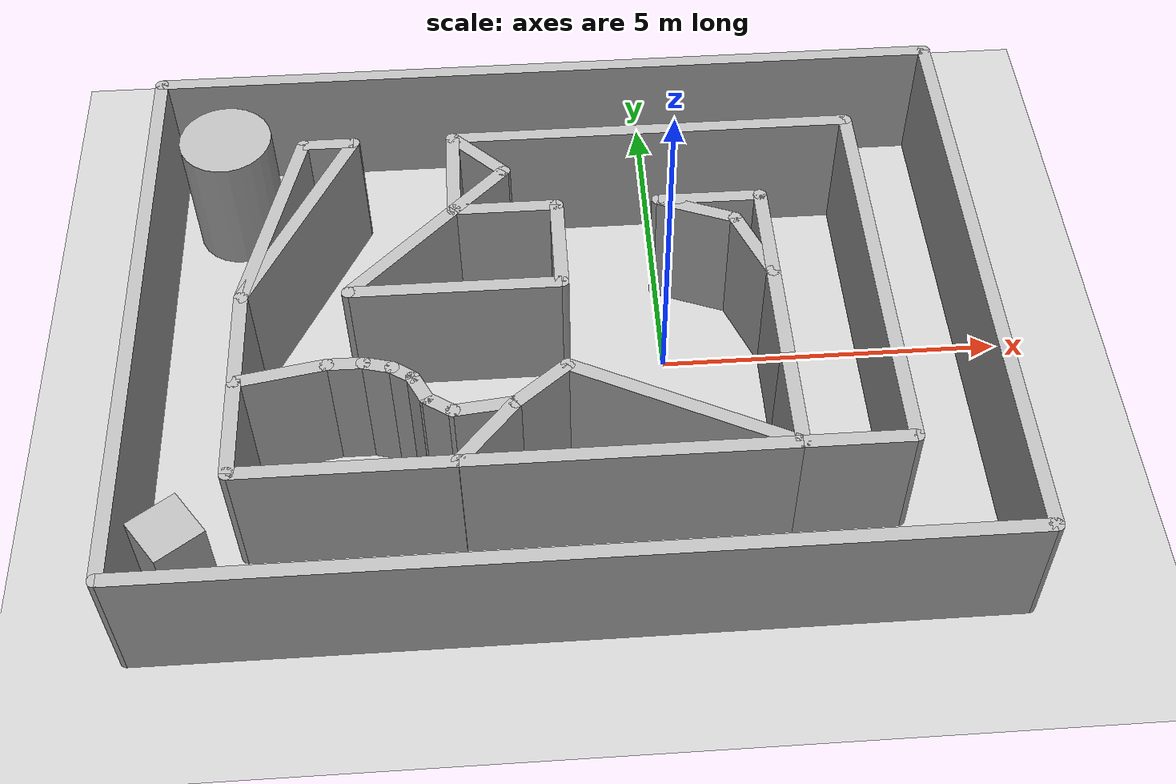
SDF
<sdf version="1.6">
 <world name="default">
  <model name="wall_0">
   <static>true</static>
   <link name="link">
    <pose>-4.875 3.000 1.000 0 0 0.000</pose>
    <collision name="collision"><geometry><box><size>0.750 0.200 2.000</size></box></geometry></collision>
    <visual name="visual"><geometry><box><size>0.750 0.200 2.000</size></box></geometry></visual>
   </link>
  </model>
  <model name="wall_1">
   <static>true</static>
   <link name="link">
    <pose>-5.625 1.500 1.000 0 0 -1.816</pose>
    <collision name="collision"><geometry><box><size>3.092 0.200 2.000</size></box></geometry></collision>
    <visual name="visual"><geometry><box><size>3.092 0.200 2.000</size></box></geometry></visual>
   </link>
  </model>
  <model name="wall_2">
   <static>true</static>
   <link name="link">
    <pose>-2.647 -2.136 1.000 0 0 -3.035</pose>
    <collision name="collision"><geometry><box><size>0.848 0.200 2.000</size></box></geometry></collision>
    <visual name="visual"><geometry><box><size>0.848 0.200 2.000</size></box></geometry></visual>
   </link>
  </model>
  <model name="wall_3">
   <static>true</static>
   <link name="link">
    <pose>-1.863 -1.796 1.000 0 0 0.684</pose>
    <collision name="collision"><geometry><box><size>0.936 0.200 2.000</size></box></geometry></collision>
    <visual name="visual"><geometry><box><size>0.936 0.200 2.000</size></box></geometry></visual>
   </link>
  </model>
  <model name="wall_4">
   <static>true</static>
   <link name="link">
    <pose>-2.613 -2.546 1.000 0 0 -2.277</pose>
    <collision name="collision"><geometry><box><size>1.194 0.200 2.000</size></box></geometry></collision>
    <visual name="visual"><geometry><box><size>1.194 0.200 2.000</size></box></geometry></visual>
   </link>
  </model>
  <model name="wall_5">
   <static>true</static>
   <link name="link">
    <pose>-0.750 -3.000 1.000 0 0 0.000</pose>
    <collision name="collision"><geometry><box><size>4.500 0.200 2.000</size></box></geometry></collision>
    <visual name="visual"><geometry><box><size>4.500 0.200 2.000</size></box></geometry></visual>
   </link>
  </model>
  <model name="wall_6">
   <static>true</static>
   <link name="link">
    <pose>-4.500 -3.000 1.000 0 0 3.142</pose>
    <collision name="collision"><geometry><box><size>3.000 0.200 2.000</size></box></geometry></collision>
    <visual name="visual"><geometry><box><size>3.000 0.200 2.000</size></box></geometry></visual>
   </link>
  </model>
  <model name="wall_7">
   <static>true</static>
   <link name="link">
    <pose>-6.000 -2.250 1.000 0 0 1.571</pose>
    <collision name="collision"><geometry><box><size>1.500 0.200 2.000</size></box></geometry></collision>
    <visual name="visual"><geometry><box><size>1.500 0.200 2.000</size></box></geometry></visual>
   </link>
  </model>
  <model name="wall_8">
   <static>true</static>
   <link name="link">
    <pose>-7.500 0.000 1.000 0 0 1.571</pose>
    <collision name="collision"><geometry><box><size>9.000 0.200 2.000</size></box></geometry></collision>
    <visual name="visual"><geometry><box><size>9.000 0.200 2.000</size></box></geometry></visual>
   </link>
  </model>
  <model name="wall_9">
   <static>true</static>
   <link name="link">
    <pose>-1.500 -4.500 1.000 0 0 0.000</pose>
    <collision name="collision"><geometry><box><size>12.000 0.200 2.000</size></box></geometry></collision>
    <visual name="visual"><geometry><box><size>12.000 0.200 2.000</size></box></geometry></visual>
   </link>
  </model>
  <model name="wall_10">
   <static>true</static>
   <link name="link">
    <pose>4.500 0.000 1.000 0 0 1.571</pose>
    <collision name="collision"><geometry><box><size>9.000 0.200 2.000</size></box></geometry></collision>
    <visual name="visual"><geometry><box><size>9.000 0.200 2.000</size></box></geometry></visual>
   </link>
  </model>
  <model name="wall_11">
   <static>true</static>
   <link name="link">
    <pose>-1.500 4.500 1.000 0 0 3.142</pose>
    <collision name="collision"><geometry><box><size>12.000 0.200 2.000</size></box></geometry></collision>
    <visual name="visual"><geometry><box><size>12.000 0.200 2.000</size></box></geometry></visual>
   </link>
  </model>
  <model name="wall_12">
   <static>true</static>
   <link name="link">
    <pose>-2.625 2.625 1.000 0 0 2.356</pose>
    <collision name="collision"><geometry><box><size>1.061 0.200 2.000</size></box></geometry></collision>
    <visual name="visual"><geometry><box><size>1.061 0.200 2.000</size></box></geometry></visual>
   </link>
  </model>
  <model name="wall_13">
   <static>true</static>
   <link name="link">
    <pose>-2.625 1.875 1.000 0 0 -2.356</pose>
    <collision name="collision"><geometry><box><size>1.061 0.200 2.000</size></box></geometry></collision>
    <visual name="visual"><geometry><box><size>1.061 0.200 2.000</size></box></geometry></visual>
   </link>
  </model>
  <model name="wall_14">
   <static>true</static>
   <link name="link">
    <pose>2.250 -3.000 1.000 0 0 -0.000</pose>
    <collision name="collision"><geometry><box><size>1.500 0.200 2.000</size></box></geometry></collision>
    <visual name="visual"><geometry><box><size>1.500 0.200 2.000</size></box></geometry></visual>
   </link>
  </model>
  <model name="wall_15">
   <static>true</static>
   <link name="link">
    <pose>0.000 -2.250 1.000 0 0 2.678</pose>
    <collision name="collision"><geometry><box><size>3.354 0.200 2.000</size></box></geometry></collision>
    <visual name="visual"><geometry><box><size>3.354 0.200 2.000</size></box></geometry></visual>
   </link>
  </model>
  <model name="wall_16">
   <static>true</static>
   <link name="link">
    <pose>1.500 -2.250 1.000 0 0 1.571</pose>
    <collision name="collision"><geometry><box><size>1.500 0.200 2.000</size></box></geometry></collision>
    <visual name="visual"><geometry><box><size>1.500 0.200 2.000</size></box></geometry></visual>
   </link>
  </model>
  <model name="wall_17">
   <static>true</static>
   <link name="link">
    <pose>0.750 1.500 1.000 0 0 -3.142</pose>
    <collision name="collision"><geometry><box><size>1.500 0.200 2.000</size></box></geometry></collision>
    <visual name="visual"><geometry><box><size>1.500 0.200 2.000</size></box></geometry></visual>
   </link>
  </model>
  <model name="wall_18">
   <static>true</static>
   <link name="link">
    <pose>1.500 0.750 1.000 0 0 -1.571</pose>
    <collision name="collision"><geometry><box><size>1.500 0.200 2.000</size></box></geometry></collision>
    <visual name="visual"><geometry><box><size>1.500 0.200 2.000</size></box></geometry></visual>
   </link>
  </model>
  <model name="wall_19">
   <static>true</static>
   <link name="link">
    <pose>1.500 -0.750 1.000 0 0 1.571</pose>
    <collision name="collision"><geometry><box><size>1.500 0.200 2.000</size></box></geometry></collision>
    <visual name="visual"><geometry><box><size>1.500 0.200 2.000</size></box></geometry></visual>
   </link>
  </model>
  <model name="wall_20">
   <static>true</static>
   <link name="link">
    <pose>-1.500 0.750 1.000 0 0 -1.571</pose>
    <collision name="collision"><geometry><box><size>1.500 0.200 2.000</size></box></geometry></collision>
    <visual name="visual"><geometry><box><size>1.500 0.200 2.000</size></box></geometry></visual>
   </link>
  </model>
  <model name="wall_21">
   <static>true</static>
   <link name="link">
    <pose>-2.250 1.500 1.000 0 0 3.142</pose>
    <collision name="collision"><geometry><box><size>1.500 0.200 2.000</size></box></geometry></collision>
    <visual name="visual"><geometry><box><size>1.500 0.200 2.000</size></box></geometry></visual>
   </link>
  </model>
  <model name="wall_22">
   <static>true</static>
   <link name="link">
    <pose>-3.750 0.750 1.000 0 0 -2.356</pose>
    <collision name="collision"><geometry><box><size>2.121 0.200 2.000</size></box></geometry></collision>
    <visual name="visual"><geometry><box><size>2.121 0.200 2.000</size></box></geometry></visual>
   </link>
  </model>
  <model name="wall_23">
   <static>true</static>
   <link name="link">
    <pose>-3.000 2.250 1.000 0 0 1.571</pose>
    <collision name="collision"><geometry><box><size>1.500 0.200 2.000</size></box></geometry></collision>
    <visual name="visual"><geometry><box><size>1.500 0.200 2.000</size></box></geometry></visual>
   </link>
  </model>
  <model name="wall_24">
   <static>true</static>
   <link name="link">
    <pose>0.000 3.000 1.000 0 0 3.142</pose>
    <collision name="collision"><geometry><box><size>6.000 0.200 2.000</size></box></geometry></collision>
    <visual name="visual"><geometry><box><size>6.000 0.200 2.000</size></box></geometry></visual>
   </link>
  </model>
  <model name="wall_25">
   <static>true</static>
   <link name="link">
    <pose>3.000 -0.000 1.000 0 0 1.571</pose>
    <collision name="collision"><geometry><box><size>6.000 0.200 2.000</size></box></geometry></collision>
    <visual name="visual"><geometry><box><size>6.000 0.200 2.000</size></box></geometry></visual>
   </link>
  </model>
  <model name="wall_26">
   <static>true</static>
   <link name="link">
    <pose>1.290 0.535 1.000 0 0 1.945</pose>
    <collision name="collision"><geometry><box><size>1.149 0.200 2.000</size></box></geometry></collision>
    <visual name="visual"><geometry><box><size>1.149 0.200 2.000</size></box></geometry></visual>
   </link>
  </model>
  <model name="wall_27">
   <static>true</static>
   <link name="link">
    <pose>0.540 1.285 1.000 0 0 -0.379</pose>
    <collision name="collision"><geometry><box><size>1.162 0.200 2.000</size></box></geometry></collision>
    <visual name="visual"><geometry><box><size>1.162 0.200 2.000</size></box></geometry></visual>
   </link>
  </model>
  <model name="wall_28">
   <static>true</static>
   <link name="link">
    <pose>-3.000 0.000 1.000 0 0 3.142</pose>
    <collision name="collision"><geometry><box><size>3.000 0.200 2.000</size></box></geometry></collision>
    <visual name="visual"><geometry><box><size>3.000 0.200 2.000</size></box></geometry></visual>
   </link>
  </model>
  <model name="wall_29">
   <static>true</static>
   <link name="link">
    <pose>-5.250 1.500 1.000 0 0 1.107</pose>
    <collision name="collision"><geometry><box><size>3.354 0.200 2.000</size></box></geometry></collision>
    <visual name="visual"><geometry><box><size>3.354 0.200 2.000</size></box></geometry></visual>
   </link>
  </model>
  <model name="wall_30">
   <static>true</static>
   <link name="link">
    <pose>-6.000 -0.750 1.000 0 0 -1.571</pose>
    <collision name="collision"><geometry><box><size>1.500 0.200 2.000</size></box></geometry></collision>
    <visual name="visual"><geometry><box><size>1.500 0.200 2.000</size></box></geometry></visual>
   </link>
  </model>
  <model name="wall_31">
   <static>true</static>
   <link name="link">
    <pose>-3.243 -2.063 1.000 0 0 2.549</pose>
    <collision name="collision"><geometry><box><size>0.422 0.200 2.000</size></box></geometry></collision>
    <visual name="visual"><geometry><box><size>0.422 0.200 2.000</size></box></geometry></visual>
   </link>
  </model>
  <model name="wall_32">
   <static>true</static>
   <link name="link">
    <pose>-3.509 -1.763 1.000 0 0 2.034</pose>
    <collision name="collision"><geometry><box><size>0.408 0.200 2.000</size></box></geometry></collision>
    <visual name="visual"><geometry><box><size>0.408 0.200 2.000</size></box></geometry></visual>
   </link>
  </model>
  <model name="wall_33">
   <static>true</static>
   <link name="link">
    <pose>-3.739 -1.485 1.000 0 0 2.541</pose>
    <collision name="collision"><geometry><box><size>0.336 0.200 2.000</size></box></geometry></collision>
    <visual name="visual"><geometry><box><size>0.336 0.200 2.000</size></box></geometry></visual>
   </link>
  </model>
  <model name="wall_34">
   <static>true</static>
   <link name="link">
    <pose>-4.073 -1.340 1.000 0 0 2.887</pose>
    <collision name="collision"><geometry><box><size>0.404 0.200 2.000</size></box></geometry></collision>
    <visual name="visual"><geometry><box><size>0.404 0.200 2.000</size></box></geometry></visual>
   </link>
  </model>
  <model name="wall_35">
   <static>true</static>
   <link name="link">
    <pose>-4.516 -1.287 1.000 0 0 3.135</pose>
    <collision name="collision"><geometry><box><size>0.495 0.200 2.000</size></box></geometry></collision>
    <visual name="visual"><geometry><box><size>0.495 0.200 2.000</size></box></geometry></visual>
   </link>
  </model>
  <model name="wall_36">
   <static>true</static>
   <link name="link">
    <pose>-5.382 -1.393 1.000 0 0 -2.970</pose>
    <collision name="collision"><geometry><box><size>1.254 0.200 2.000</size></box></geometry></collision>
    <visual name="visual"><geometry><box><size>1.254 0.200 2.000</size></box></geometry></visual>
   </link>
  </model>
  <model name="corner_0">
   <static>true</static>
   <link name="link">
    <pose>-2.225 -2.091 1.000 0 0 0</pose>
    <collision name="collision">
     <geometry><cylinder><radius>0.100</radius><length>2.000</length></cylinder></geometry>
    </collision>
    <visual name="visual">
     <geometry><cylinder><radius>0.100</radius><length>2.000</length></cylinder></geometry>
    </visual>
   </link>
  </model>
  <model name="corner_1">
   <static>true</static>
   <link name="link">
    <pose>-1.500 1.500 1.000 0 0 0</pose>
    <collision name="collision">
     <geometry><cylinder><radius>0.100</radius><length>2.000</length></cylinder></geometry>
    </collision>
    <visual name="visual">
     <geometry><cylinder><radius>0.100</radius><length>2.000</length></cylinder></geometry>
    </visual>
   </link>
  </model>
  <model name="corner_2">
   <static>true</static>
   <link name="link">
    <pose>-3.601 -1.580 1.000 0 0 0</pose>
    <collision name="collision">
     <geometry><cylinder><radius>0.100</radius><length>2.000</length></cylinder></geometry>
    </collision>
    <visual name="visual">
     <geometry><cylinder><radius>0.100</radius><length>2.000</length></cylinder></geometry>
    </visual>
   </link>
  </model>
  <model name="corner_3">
   <static>true</static>
   <link name="link">
    <pose>-5.250 3.000 1.000 0 0 0</pose>
    <collision name="collision">
     <geometry><cylinder><radius>0.100</radius><length>2.000</length></cylinder></geometry>
    </collision>
    <visual name="visual">
     <geometry><cylinder><radius>0.100</radius><length>2.000</length></cylinder></geometry>
    </visual>
   </link>
  </model>
  <model name="corner_4">
   <static>true</static>
   <link name="link">
    <pose>-1.500 -1.500 1.000 0 0 0</pose>
    <collision name="collision">
     <geometry><cylinder><radius>0.100</radius><length>2.000</length></cylinder></geometry>
    </collision>
    <visual name="visual">
     <geometry><cylinder><radius>0.100</radius><length>2.000</length></cylinder></geometry>
    </visual>
   </link>
  </model>
  <model name="corner_5">
   <static>true</static>
   <link name="link">
    <pose>-3.418 -1.945 1.000 0 0 0</pose>
    <collision name="collision">
     <geometry><cylinder><radius>0.100</radius><length>2.000</length></cylinder></geometry>
    </collision>
    <visual name="visual">
     <geometry><cylinder><radius>0.100</radius><length>2.000</length></cylinder></geometry>
    </visual>
   </link>
  </model>
  <model name="corner_6">
   <static>true</static>
   <link name="link">
    <pose>1.500 -1.500 1.000 0 0 0</pose>
    <collision name="collision">
     <geometry><cylinder><radius>0.100</radius><length>2.000</length></cylinder></geometry>
    </collision>
    <visual name="visual">
     <geometry><cylinder><radius>0.100</radius><length>2.000</length></cylinder></geometry>
    </visual>
   </link>
  </model>
  <model name="corner_7">
   <static>true</static>
   <link name="link">
    <pose>-3.068 -2.181 1.000 0 0 0</pose>
    <collision name="collision">
     <geometry><cylinder><radius>0.100</radius><length>2.000</length></cylinder></geometry>
    </collision>
    <visual name="visual">
     <geometry><cylinder><radius>0.100</radius><length>2.000</length></cylinder></geometry>
    </visual>
   </link>
  </model>
  <model name="corner_8">
   <static>true</static>
   <link name="link">
    <pose>1.500 1.500 1.000 0 0 0</pose>
    <collision name="collision">
     <geometry><cylinder><radius>0.100</radius><length>2.000</length></cylinder></geometry>
    </collision>
    <visual name="visual">
     <geometry><cylinder><radius>0.100</radius><length>2.000</length></cylinder></geometry>
    </visual>
   </link>
  </model>
  <model name="corner_9">
   <static>true</static>
   <link name="link">
    <pose>-4.500 0.000 1.000 0 0 0</pose>
    <collision name="collision">
     <geometry><cylinder><radius>0.100</radius><length>2.000</length></cylinder></geometry>
    </collision>
    <visual name="visual">
     <geometry><cylinder><radius>0.100</radius><length>2.000</length></cylinder></geometry>
    </visual>
   </link>
  </model>
  <model name="corner_10">
   <static>true</static>
   <link name="link">
    <pose>1.500 -3.000 1.000 0 0 0</pose>
    <collision name="collision">
     <geometry><cylinder><radius>0.100</radius><length>2.000</length></cylinder></geometry>
    </collision>
    <visual name="visual">
     <geometry><cylinder><radius>0.100</radius><length>2.000</length></cylinder></geometry>
    </visual>
   </link>
  </model>
  <model name="corner_11">
   <static>true</static>
   <link name="link">
    <pose>-6.000 0.000 1.000 0 0 0</pose>
    <collision name="collision">
     <geometry><cylinder><radius>0.100</radius><length>2.000</length></cylinder></geometry>
    </collision>
    <visual name="visual">
     <geometry><cylinder><radius>0.100</radius><length>2.000</length></cylinder></geometry>
    </visual>
   </link>
  </model>
  <model name="corner_12">
   <static>true</static>
   <link name="link">
    <pose>-2.250 2.250 1.000 0 0 0</pose>
    <collision name="collision">
     <geometry><cylinder><radius>0.100</radius><length>2.000</length></cylinder></geometry>
    </collision>
    <visual name="visual">
     <geometry><cylinder><radius>0.100</radius><length>2.000</length></cylinder></geometry>
    </visual>
   </link>
  </model>
  <model name="corner_13">
   <static>true</static>
   <link name="link">
    <pose>-1.500 0.000 1.000 0 0 0</pose>
    <collision name="collision">
     <geometry><cylinder><radius>0.100</radius><length>2.000</length></cylinder></geometry>
    </collision>
    <visual name="visual">
     <geometry><cylinder><radius>0.100</radius><length>2.000</length></cylinder></geometry>
    </visual>
   </link>
  </model>
  <model name="corner_14">
   <static>true</static>
   <link name="link">
    <pose>-7.500 4.500 1.000 0 0 0</pose>
    <collision name="collision">
     <geometry><cylinder><radius>0.100</radius><length>2.000</length></cylinder></geometry>
    </collision>
    <visual name="visual">
     <geometry><cylinder><radius>0.100</radius><length>2.000</length></cylinder></geometry>
    </visual>
   </link>
  </model>
  <model name="corner_15">
   <static>true</static>
   <link name="link">
    <pose>1.080 1.070 1.000 0 0 0</pose>
    <collision name="collision">
     <geometry><cylinder><radius>0.100</radius><length>2.000</length></cylinder></geometry>
    </collision>
    <visual name="visual">
     <geometry><cylinder><radius>0.100</radius><length>2.000</length></cylinder></geometry>
    </visual>
   </link>
  </model>
  <model name="corner_16">
   <static>true</static>
   <link name="link">
    <pose>4.500 4.500 1.000 0 0 0</pose>
    <collision name="collision">
     <geometry><cylinder><radius>0.100</radius><length>2.000</length></cylinder></geometry>
    </collision>
    <visual name="visual">
     <geometry><cylinder><radius>0.100</radius><length>2.000</length></cylinder></geometry>
    </visual>
   </link>
  </model>
  <model name="corner_17">
   <static>true</static>
   <link name="link">
    <pose>0.000 1.500 1.000 0 0 0</pose>
    <collision name="collision">
     <geometry><cylinder><radius>0.100</radius><length>2.000</length></cylinder></geometry>
    </collision>
    <visual name="visual">
     <geometry><cylinder><radius>0.100</radius><length>2.000</length></cylinder></geometry>
    </visual>
   </link>
  </model>
  <model name="corner_18">
   <static>true</static>
   <link name="link">
    <pose>4.500 -4.500 1.000 0 0 0</pose>
    <collision name="collision">
     <geometry><cylinder><radius>0.100</radius><length>2.000</length></cylinder></geometry>
    </collision>
    <visual name="visual">
     <geometry><cylinder><radius>0.100</radius><length>2.000</length></cylinder></geometry>
    </visual>
   </link>
  </model>
  <model name="corner_19">
   <static>true</static>
   <link name="link">
    <pose>1.500 0.000 1.000 0 0 0</pose>
    <collision name="collision">
     <geometry><cylinder><radius>0.100</radius><length>2.000</length></cylinder></geometry>
    </collision>
    <visual name="visual">
     <geometry><cylinder><radius>0.100</radius><length>2.000</length></cylinder></geometry>
    </visual>
   </link>
  </model>
  <model name="corner_20">
   <static>true</static>
   <link name="link">
    <pose>-4.500 3.000 1.000 0 0 0</pose>
    <collision name="collision">
     <geometry><cylinder><radius>0.100</radius><length>2.000</length></cylinder></geometry>
    </collision>
    <visual name="visual">
     <geometry><cylinder><radius>0.100</radius><length>2.000</length></cylinder></geometry>
    </visual>
   </link>
  </model>
  <model name="corner_21">
   <static>true</static>
   <link name="link">
    <pose>-7.500 -4.500 1.000 0 0 0</pose>
    <collision name="collision">
     <geometry><cylinder><radius>0.100</radius><length>2.000</length></cylinder></geometry>
    </collision>
    <visual name="visual">
     <geometry><cylinder><radius>0.100</radius><length>2.000</length></cylinder></geometry>
    </visual>
   </link>
  </model>
  <model name="corner_22">
   <static>true</static>
   <link name="link">
    <pose>-3.000 3.000 1.000 0 0 0</pose>
    <collision name="collision">
     <geometry><cylinder><radius>0.100</radius><length>2.000</length></cylinder></geometry>
    </collision>
    <visual name="visual">
     <geometry><cylinder><radius>0.100</radius><length>2.000</length></cylinder></geometry>
    </visual>
   </link>
  </model>
  <model name="corner_23">
   <static>true</static>
   <link name="link">
    <pose>-6.000 -1.500 1.000 0 0 0</pose>
    <collision name="collision">
     <geometry><cylinder><radius>0.100</radius><length>2.000</length></cylinder></geometry>
    </collision>
    <visual name="visual">
     <geometry><cylinder><radius>0.100</radius><length>2.000</length></cylinder></geometry>
    </visual>
   </link>
  </model>
  <model name="corner_24">
   <static>true</static>
   <link name="link">
    <pose>-6.000 -3.000 1.000 0 0 0</pose>
    <collision name="collision">
     <geometry><cylinder><radius>0.100</radius><length>2.000</length></cylinder></geometry>
    </collision>
    <visual name="visual">
     <geometry><cylinder><radius>0.100</radius><length>2.000</length></cylinder></geometry>
    </visual>
   </link>
  </model>
  <model name="corner_25">
   <static>true</static>
   <link name="link">
    <pose>3.000 3.000 1.000 0 0 0</pose>
    <collision name="collision">
     <geometry><cylinder><radius>0.100</radius><length>2.000</length></cylinder></geometry>
    </collision>
    <visual name="visual">
     <geometry><cylinder><radius>0.100</radius><length>2.000</length></cylinder></geometry>
    </visual>
   </link>
  </model>
  <model name="corner_26">
   <static>true</static>
   <link name="link">
    <pose>-4.764 -1.286 1.000 0 0 0</pose>
    <collision name="collision">
     <geometry><cylinder><radius>0.100</radius><length>2.000</length></cylinder></geometry>
    </collision>
    <visual name="visual">
     <geometry><cylinder><radius>0.100</radius><length>2.000</length></cylinder></geometry>
    </visual>
   </link>
  </model>
  <model name="corner_27">
   <static>true</static>
   <link name="link">
    <pose>3.000 -3.000 1.000 0 0 0</pose>
    <collision name="collision">
     <geometry><cylinder><radius>0.100</radius><length>2.000</length></cylinder></geometry>
    </collision>
    <visual name="visual">
     <geometry><cylinder><radius>0.100</radius><length>2.000</length></cylinder></geometry>
    </visual>
   </link>
  </model>
  <model name="corner_28">
   <static>true</static>
   <link name="link">
    <pose>3.000 3.000 1.000 0 0 0</pose>
    <collision name="collision">
     <geometry><cylinder><radius>0.100</radius><length>2.000</length></cylinder></geometry>
    </collision>
    <visual name="visual">
     <geometry><cylinder><radius>0.100</radius><length>2.000</length></cylinder></geometry>
    </visual>
   </link>
  </model>
  <model name="corner_29">
   <static>true</static>
   <link name="link">
    <pose>-4.269 -1.289 1.000 0 0 0</pose>
    <collision name="collision">
     <geometry><cylinder><radius>0.100</radius><length>2.000</length></cylinder></geometry>
    </collision>
    <visual name="visual">
     <geometry><cylinder><radius>0.100</radius><length>2.000</length></cylinder></geometry>
    </visual>
   </link>
  </model>
  <model name="corner_30">
   <static>true</static>
   <link name="link">
    <pose>-3.000 -3.000 1.000 0 0 0</pose>
    <collision name="collision">
     <geometry><cylinder><radius>0.100</radius><length>2.000</length></cylinder></geometry>
    </collision>
    <visual name="visual">
     <geometry><cylinder><radius>0.100</radius><length>2.000</length></cylinder></geometry>
    </visual>
   </link>
  </model>
  <model name="corner_31">
   <static>true</static>
   <link name="link">
    <pose>-3.000 1.500 1.000 0 0 0</pose>
    <collision name="collision">
     <geometry><cylinder><radius>0.100</radius><length>2.000</length></cylinder></geometry>
    </collision>
    <visual name="visual">
     <geometry><cylinder><radius>0.100</radius><length>2.000</length></cylinder></geometry>
    </visual>
   </link>
  </model>
  <model name="corner_32">
   <static>true</static>
   <link name="link">
    <pose>-3.878 -1.390 1.000 0 0 0</pose>
    <collision name="collision">
     <geometry><cylinder><radius>0.100</radius><length>2.000</length></cylinder></geometry>
    </collision>
    <visual name="visual">
     <geometry><cylinder><radius>0.100</radius><length>2.000</length></cylinder></geometry>
    </visual>
   </link>
  </model>
  <model name="custom_shape">
   <static>true</static>
   <link name="link">
    <pose>-6.436 3.202 1.000 0 0 -0.928</pose>
    <collision name="collision">
     <geometry><cylinder><radius>0.692</radius><length>2.000</length></cylinder></geometry>
    </collision>
    <visual name="visual">
     <geometry><cylinder><radius>0.692</radius><length>2.000</length></cylinder></geometry>
    </visual>
   </link>
  </model>
  <model name="custom_shape2">
   <static>true</static>
   <link name="link">
    <pose>-6.712 -3.777 1.000 0 0 -0.951</pose>
    <collision name="collision"><geometry><box><size>0.746 0.746 2.000</size></box></geometry></collision>
    <visual name="visual"><geometry><box><size>0.746 0.746 2.000</size></box></geometry></visual>
   </link>
  </model>
  <include><uri>model://ground_plane</uri></include>
  <include><uri>model://sun</uri></include>
 </world>
</sdf>
